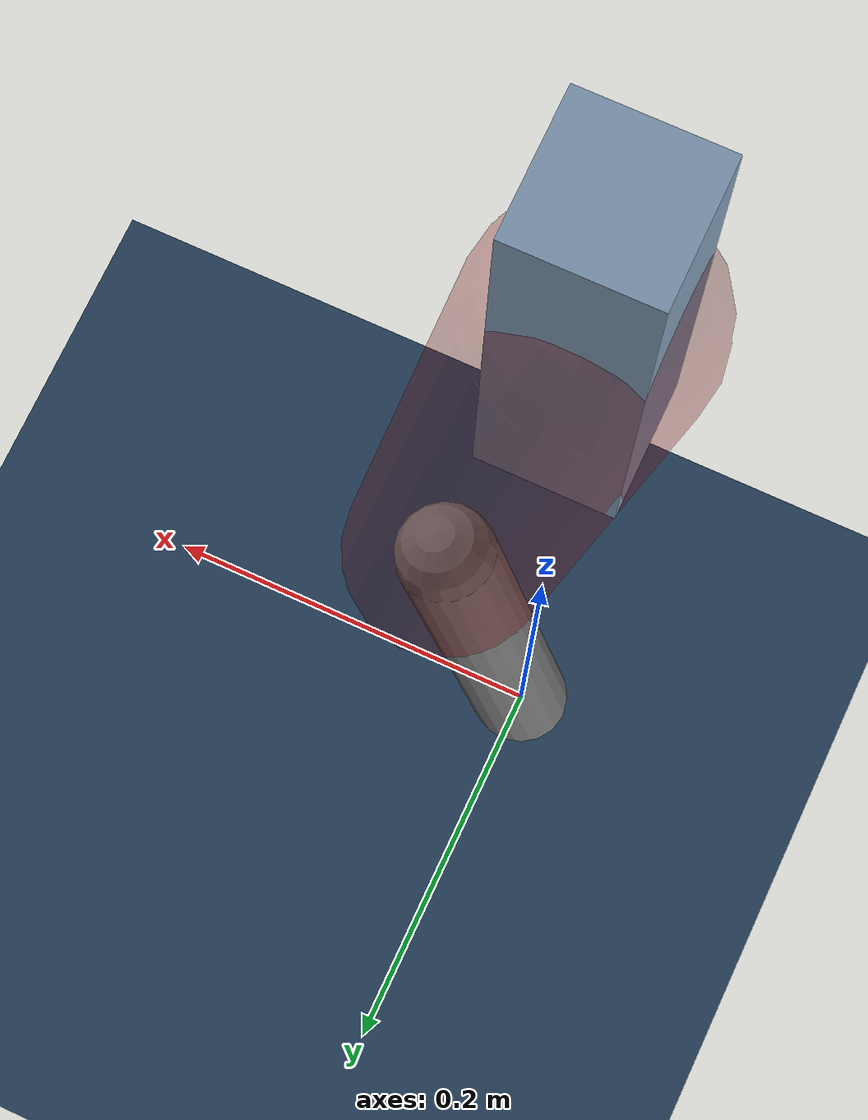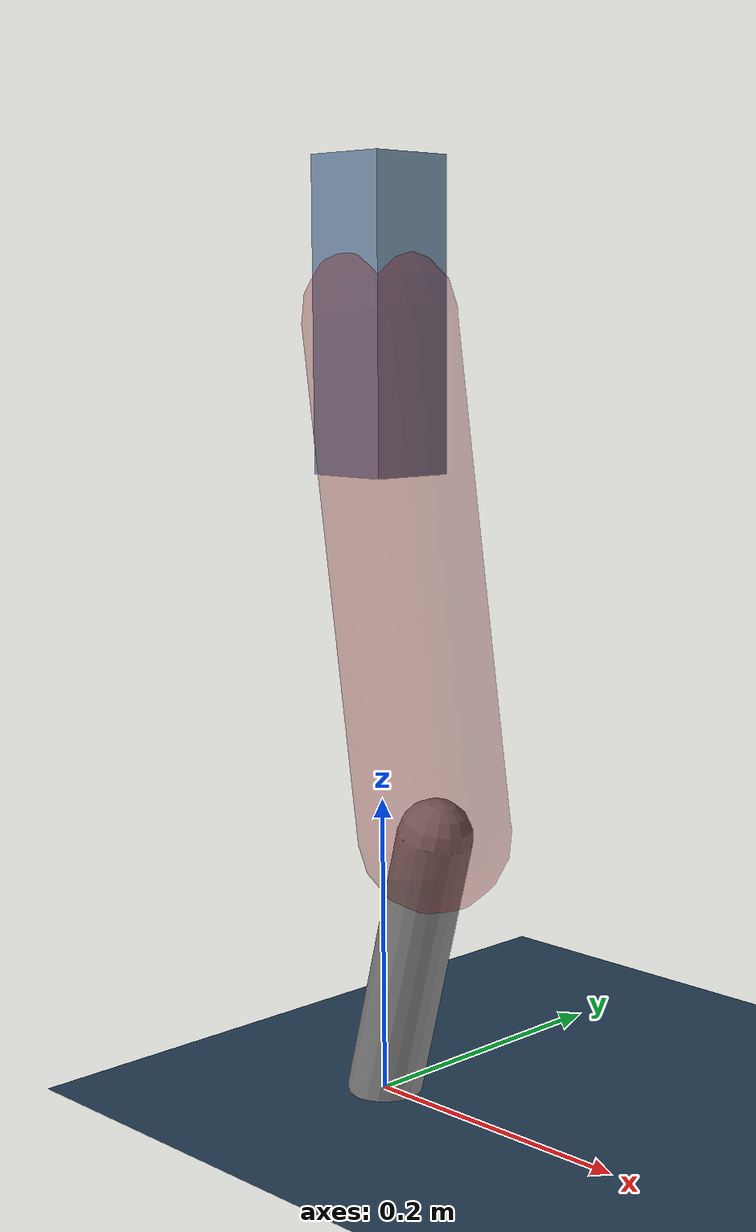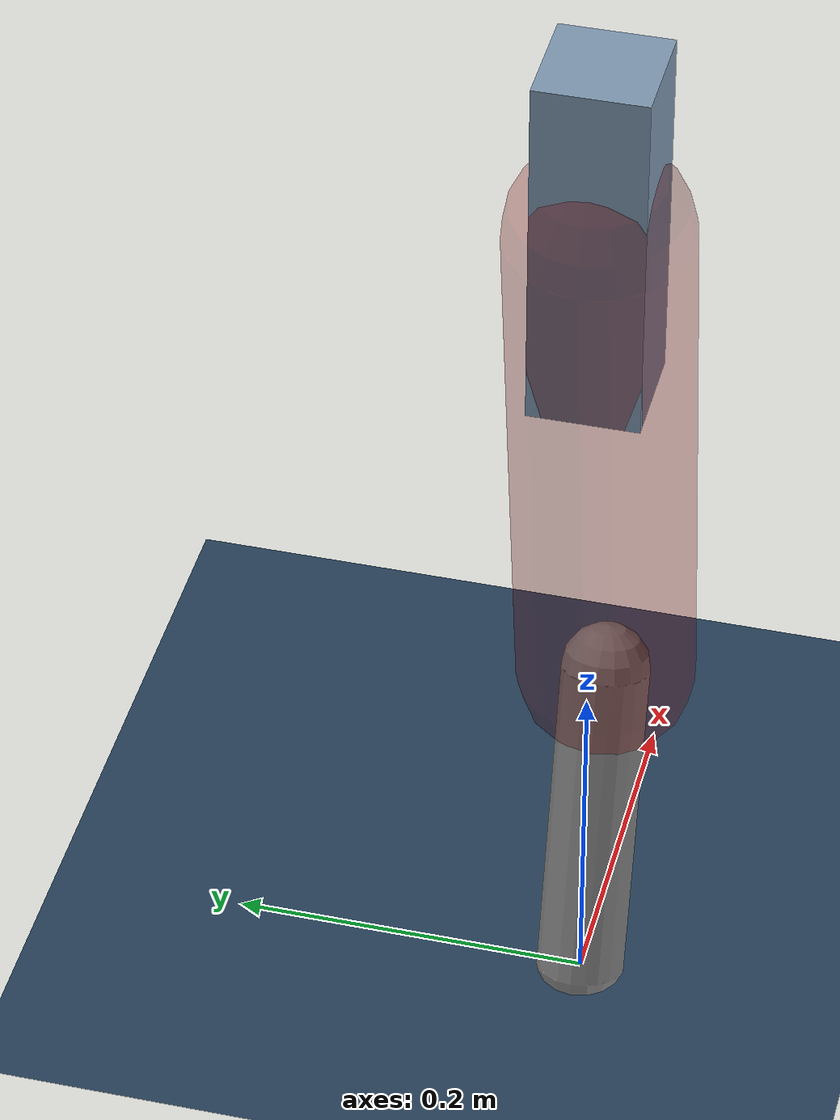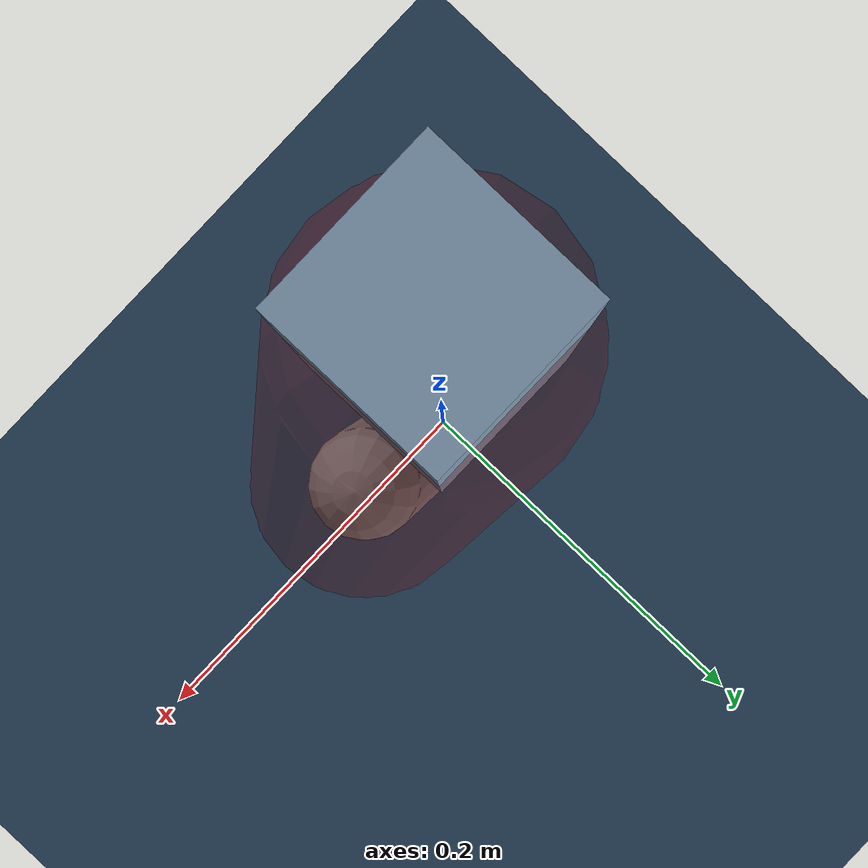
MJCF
<mujoco model="Hopper2D">
	<compiler inertiafromgeom="true" angle="radian" />
	<option timestep="0.001" integrator="implicit" cone="elliptic" solver="Newton" tolerance="1e-10" />

	<default>
		<geom contype="1" conaffinity="1" condim="3" friction="2 0.005 0.0001" solref="0.005 1" />
		<joint limited="true" damping="0.1" />
	</default>

	<asset>
		<texture name="skybox" type="skybox" builtin="gradient" rgb1=".4 .6 .8" rgb2="0 0 0" width="800" height="800" />
		<texture name="grid" type="2d" builtin="checker" rgb1=".1 .2 .3" rgb2=".2 .3 .4" width="300" height="300" mark="edge" markrgb=".2 .3 .4" />
		<material name="ground" texture="grid" texrepeat="1 1" texuniform="true" reflectance="0.1" />
		<material name="leg" rgba="0.5 0.6 0.7 1" />
	</asset>

	<worldbody>

		<geom name="floor" type="plane" size="5 5 0.25" material="ground" />

		<light directional="false" diffuse="0.8 0.8 0.8" specular="0.3 0.3 0.3" pos="0 0 2" dir="0 0 -1" />
		<light mode="targetbodycom" target="base" directional="false" diffuse="0.8 0.8 0.8" specular="0.3 0.3 0.3" pos="0 0 2" dir="0 0 -1" />

		<camera name="fixed" pos="0 -2 1" xyaxes="1 0 0 0 0 1" />
		<camera name="tracking" mode="trackcom" pos="0 -3 1" />

		<body name="root" pos="0 0 0.5149983598589692">
			<joint name="slide_x" type="slide" axis="1 0 0" range="-100 100" />
			<joint name="slide_z" type="slide" axis="0 0 1" range="0 10" />

			<body name="base" pos="0 0 0">
				<geom name="torso" type="box" size="0.03 0.03 0.1" mass="2.04" material="leg" />

				<body name="link1" pos="0 0 0" euler="0 1.4240005367987558 0">
					<joint type="hinge" axis="0 -1 0" pos="0 0 0" name="hinge1" limited="true" range="-3.14 3.14" stiffness="0" damping="0.1" />
					<geom name="thigh" type="capsule" fromto="0 0 0 0.3346431036230325 0 0" size="0.05" rgba="0.5 0 0 0.3" mass="1.083700690144491" />

					<body name="link2" pos="0.3346431036230325 0 0" euler="0 0.4068573527857666 0">
						<joint type="hinge" axis="0 -1 0" pos="0 0 0" name="hinge2" limited="true" range="-3.14 3.14" stiffness="0" damping="0.1" />
						<geom name="shank" type="capsule" fromto="0 0 0 0.19035525623593677 0 0" size="0.025" mass="0.3927197306123431" />

					</body>
				</body>
			</body>
		</body>
	</worldbody>

	<actuator>
		<motor name="torque1" joint="hinge1" ctrlrange="-55.136210995464346 55.136210995464346" ctrllimited="true" gear="1" />
		<motor name="torque2" joint="hinge2" ctrlrange="-59.76302321439439 59.76302321439439" ctrllimited="true" gear="1" />
	</actuator>
</mujoco>
